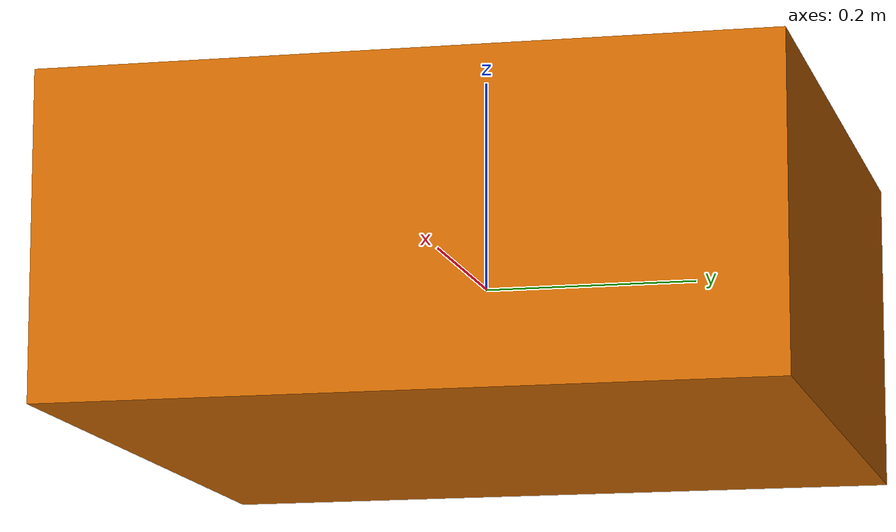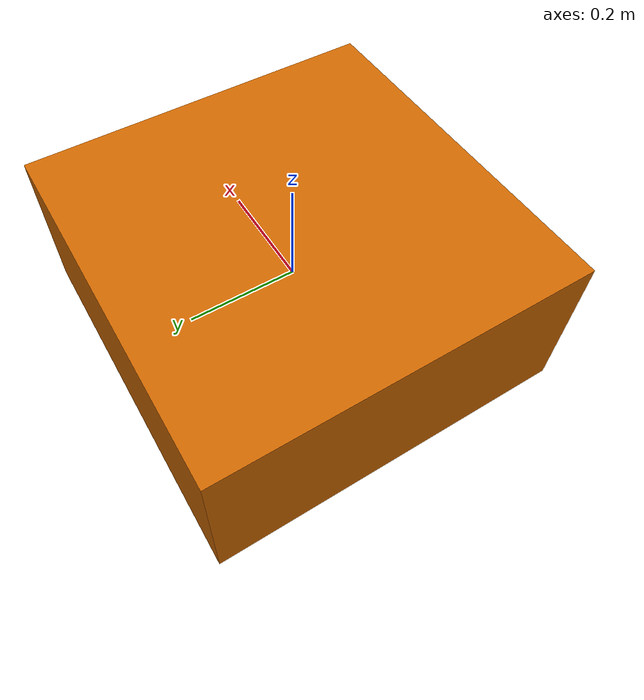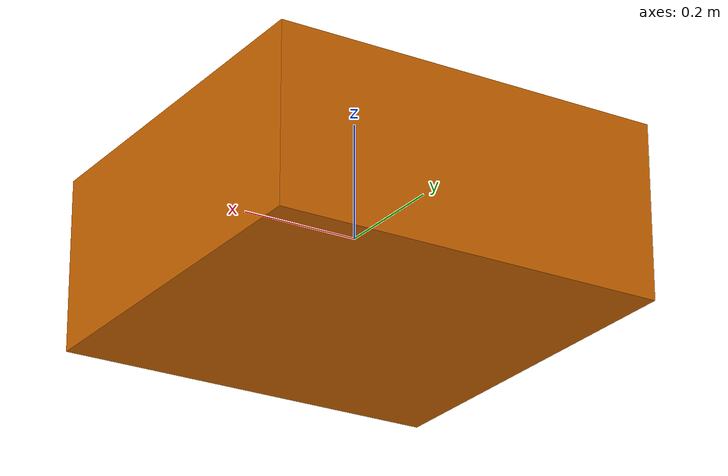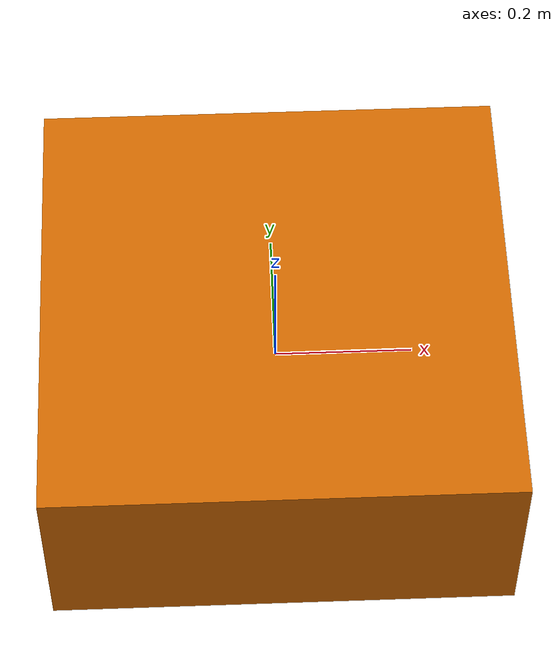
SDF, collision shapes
<!-- DO NOT EDIT: Generated from iris.sdf.jinja -->
<sdf version='1.5'>
  <model name='borinot'>
    <pose>0 0 0.0 0 0 0</pose>
    <link name='borinot__base_link'>
      <pose>0 0 0 0 0 0</pose>
      <inertial>
        <pose>0 0 0 0 0 0</pose>
        <mass>2.085</mass>
        <inertia>
          <ixx>0.017598</ixx>
          <ixy>0.0</ixy>
          <ixz>0.0</ixz>
          <iyy>0.017957</iyy>
          <iyz>0.0</iyz>
          <izz>0.029599</izz>
        </inertia>
      </inertial>
      <!-- TODO: check that is touching the ground -->
      <collision name='base_link_collision'>
        <pose>0 0 0.0 0 0 0</pose>
        <geometry>
          <box>
            <size>0.67 0.67 0.30</size>
          </box>
        </geometry>
        <surface>
          <contact>
            <ode>
              <min_depth>0.001</min_depth>
              <max_vel>0</max_vel>
            </ode>
          </contact>
          <friction>
            <ode />
          </friction>
        </surface>
      </collision>
      <visual name='base_link_visual'>
        <pose>0 0 0 0 0 0</pose>
        <geometry>
          <mesh>
            <scale>1 1 1</scale>
            <!-- TODO: add specific borinot mesh -->
            <uri>model://borinot/meshes/borinot__base_link.dae</uri>
          </mesh>
        </geometry>
        <material>
          <ambient>0.8 0.4 0 1</ambient>
          <diffuse>0.8 0.4 0 1</diffuse>
          <specular>0.1 0.1 0.1 1</specular>
          <emissive>0 0 0 0</emissive>
        </material>
      </visual>
      <gravity>1</gravity>
      <velocity_decay />
    </link>
    <link name='imu_link'>
      <pose>0 0 0 0 0 0</pose>
      <inertial>
        <pose>0 0 0 0 0 0</pose>
        <mass>0.015</mass>
        <inertia>
          <ixx>1e-05</ixx>
          <ixy>0</ixy>
          <ixz>0</ixz>
          <iyy>1e-05</iyy>
          <iyz>0</iyz>
          <izz>1e-05</izz>
        </inertia>
      </inertial>
      <sensor name="imu_sensor" type="imu">
        <always_on>1</always_on>
        <update_rate>250</update_rate>
        <visualize>true</visualize>
      </sensor>
    </link>
    <joint name='imu_joint' type='revolute'>
      <child>imu_link</child>
      <parent>borinot__base_link</parent>
      <axis>
        <xyz>1 0 0</xyz>
        <limit>
          <lower>0</lower>
          <upper>0</upper>
          <effort>0</effort>
          <velocity>0</velocity>
        </limit>
        <dynamics>
          <spring_reference>0</spring_reference>
          <spring_stiffness>0</spring_stiffness>
        </dynamics>
        <use_parent_model_frame>1</use_parent_model_frame>
      </axis>
    </joint>
    <link name='rotor_0'>
      <pose> 0 -0.185 0.05 0 0 0</pose>
      <inertial>
        <pose>0 0 0 0 0 0</pose>
        <mass>0.005</mass>
        <inertia>
          <ixx>9.75e-07</ixx>
          <ixy>0</ixy>
          <ixz>0</ixz>
          <iyy>0.000273104</iyy>
          <iyz>0</iyz>
          <izz>0.000274004</izz>
        </inertia>
      </inertial>
      <collision name='rotor_0_collision'>
        <pose>0 0 0 0 0 0</pose>
        <geometry>
          <cylinder>
            <length>0.005</length>
            <radius>0.128</radius>
          </cylinder>
        </geometry>
        <surface>
          <contact>
            <ode />
          </contact>
          <friction>
            <ode />
          </friction>
        </surface>
      </collision>
      <visual name='rotor_0_visual'>
        <pose>0 0 0 0 0 0</pose>
        <geometry>
          <mesh>
            <scale>0.1 0.1 0.1</scale>
            <uri>model://borinot/meshes/propeller_cw.dae</uri>
          </mesh>
        </geometry>
        <material>
          <script>
            <name>Gazebo/DarkGrey</name>
            <uri>file://media/materials/scripts/gazebo.material</uri>
          </script>
        </material>
      </visual>
      <gravity>1</gravity>
      <velocity_decay />
    </link>
    <joint name='rotor_0_joint' type='revolute'>
      <child>rotor_0</child>
      <parent>borinot__base_link</parent>
      <axis>
        <xyz>0 0 1</xyz>
        <limit>
          <lower>-1e+16</lower>
          <upper>1e+16</upper>
        </limit>
        <dynamics>
          <spring_reference>0</spring_reference>
          <spring_stiffness>0</spring_stiffness>
        </dynamics>
        <use_parent_model_frame>1</use_parent_model_frame>
      </axis>
    </joint>
    <link name='rotor_1'>
      <pose>0 0.185 0.05 0 0 0</pose>
      <inertial>
        <pose>0 0 0 0 0 0</pose>
        <mass>0.005</mass>
        <inertia>
          <ixx>9.75e-07</ixx>
          <ixy>0</ixy>
          <ixz>0</ixz>
          <iyy>0.000273104</iyy>
          <iyz>0</iyz>
          <izz>0.000274004</izz>
        </inertia>
      </inertial>
      <collision name='rotor_1_collision'>
        <pose>0 0 0 0 0 0</pose>
        <geometry>
          <cylinder>
            <length>0.005</length>
            <radius>0.128</radius>
          </cylinder>
        </geometry>
        <surface>
          <contact>
            <ode />
          </contact>
          <friction>
            <ode />
          </friction>
        </surface>
      </collision>
      <visual name='rotor_1_visual'>
        <pose>0 0 0 0 0 0</pose>
        <geometry>
          <mesh>
            <scale>0.1 0.1 0.1</scale>
            <uri>model://borinot/meshes/propeller_ccw.dae</uri>
          </mesh>
        </geometry>
        <material>
          <script>
            <name>Gazebo/DarkGrey</name>
            <uri>file://media/materials/scripts/gazebo.material</uri>
          </script>
        </material>
      </visual>
      <gravity>1</gravity>
      <velocity_decay />
    </link>
    <joint name='rotor_1_joint' type='revolute'>
      <child>rotor_1</child>
      <parent>borinot__base_link</parent>
      <axis>
        <xyz>0 0 1</xyz>
        <limit>
          <lower>-1e+16</lower>
          <upper>1e+16</upper>
        </limit>
        <dynamics>
          <spring_reference>0</spring_reference>
          <spring_stiffness>0</spring_stiffness>
        </dynamics>
        <use_parent_model_frame>1</use_parent_model_frame>
      </axis>
    </joint>
    <link name='rotor_2'>
      <pose>0.1602146997 0.0925 0.05 0 0 0</pose>
      <inertial>
        <pose>0 0 0 0 0 0</pose>
        <mass>0.005</mass>
        <inertia>
          <ixx>9.75e-07</ixx>
          <ixy>0</ixy>
          <ixz>0</ixz>
          <iyy>0.000273104</iyy>
          <iyz>0</iyz>
          <izz>0.000274004</izz>
        </inertia>
      </inertial>
      <collision name='rotor_2_collision'>
        <pose>0 0 0 0 0 0</pose>
        <geometry>
          <cylinder>
            <length>0.005</length>
            <radius>0.128</radius>
          </cylinder>
        </geometry>
        <surface>
          <contact>
            <ode />
          </contact>
          <friction>
            <ode />
          </friction>
        </surface>
      </collision>
      <visual name='rotor_2_visual'>
        <pose>0 0 0 0 0 0</pose>
        <geometry>
          <mesh>
            <scale>0.1 0.1 0.1</scale>
            <uri>model://borinot/meshes/propeller_cw.dae</uri>
          </mesh>
        </geometry>
        <material>
          <script>
            <name>Gazebo/Blue</name>
            <uri>file://media/materials/scripts/gazebo.material</uri>
          </script>
        </material>
      </visual>
      <gravity>1</gravity>
      <velocity_decay />
    </link>
    <joint name='rotor_2_joint' type='revolute'>
      <child>rotor_2</child>
      <parent>borinot__base_link</parent>
      <axis>
        <xyz>0 0 1</xyz>
        <limit>
          <lower>-1e+16</lower>
          <upper>1e+16</upper>
        </limit>
        <dynamics>
          <spring_reference>0</spring_reference>
          <spring_stiffness>0</spring_stiffness>
        </dynamics>
        <use_parent_model_frame>1</use_parent_model_frame>
      </axis>
    </joint>
    <link name='rotor_3'>
      <pose>-0.1602146997 -0.0925 0.05 0 0 0</pose>
      <inertial>
        <pose>0 0 0 0 0 0</pose>
        <mass>0.005</mass>
        <inertia>
          <ixx>9.75e-07</ixx>
          <ixy>0</ixy>
          <ixz>0</ixz>
          <iyy>0.000273104</iyy>
          <iyz>0</iyz>
          <izz>0.000274004</izz>
        </inertia>
      </inertial>
      <collision name='rotor_3_collision'>
        <pose>0 0 0 0 0 0</pose>
        <geometry>
          <cylinder>
            <length>0.005</length>
            <radius>0.128</radius>
          </cylinder>
        </geometry>
        <surface>
          <contact>
            <ode />
          </contact>
          <friction>
            <ode />
          </friction>
        </surface>
      </collision>
      <visual name='rotor_3_visual'>
        <pose>0 0 0 0 0 0</pose>
        <geometry>
          <mesh>
            <scale>0.1 0.1 0.1</scale>
            <uri>model://borinot/meshes/propeller_ccw.dae</uri>
          </mesh>
        </geometry>
        <material>
          <script>
            <name>Gazebo/DarkGrey</name>
            <uri>file://media/materials/scripts/gazebo.material</uri>
          </script>
        </material>
      </visual>
      <gravity>1</gravity>
      <velocity_decay />
    </link>
    <joint name='rotor_3_joint' type='revolute'>
      <child>rotor_3</child>
      <parent>borinot__base_link</parent>
      <axis>
        <xyz>0 0 1</xyz>
        <limit>
          <lower>-1e+16</lower>
          <upper>1e+16</upper>
        </limit>
        <dynamics>
          <spring_reference>0</spring_reference>
          <spring_stiffness>0</spring_stiffness>
        </dynamics>
        <use_parent_model_frame>1</use_parent_model_frame>
      </axis>
    </joint>
    <link name='rotor_4'>
      <pose>0.1602146997 -0.0925 0.05 0 0 0</pose>
      <inertial>
        <pose>0 0 0 0 0 0</pose>
        <mass>0.005</mass>
        <inertia>
          <ixx>9.75e-07</ixx>
          <ixy>0</ixy>
          <ixz>0</ixz>
          <iyy>0.000273104</iyy>
          <iyz>0</iyz>
          <izz>0.000274004</izz>
        </inertia>
      </inertial>
      <collision name='rotor_4_collision'>
        <pose>0 0 0 0 0 0</pose>
        <geometry>
          <cylinder>
            <length>0.005</length>
            <radius>0.128</radius>
          </cylinder>
        </geometry>
        <surface>
          <contact>
            <ode />
          </contact>
          <friction>
            <ode />
          </friction>
        </surface>
      </collision>
      <visual name='rotor_4_visual'>
        <pose>0 0 0 0 0 0</pose>
        <geometry>
          <mesh>
            <scale>0.1 0.1 0.1</scale>
            <uri>model://borinot/meshes/propeller_ccw.dae</uri>
          </mesh>
        </geometry>
        <material>
          <script>
            <name>Gazebo/Blue</name>
            <uri>file://media/materials/scripts/gazebo.material</uri>
          </script>
        </material>
      </visual>
      <gravity>1</gravity>
      <velocity_decay />
    </link>
    <joint name='rotor_4_joint' type='revolute'>
      <child>rotor_4</child>
      <parent>borinot__base_link</parent>
      <axis>
        <xyz>0 0 1</xyz>
        <limit>
          <lower>-1e+16</lower>
          <upper>1e+16</upper>
        </limit>
        <dynamics>
          <spring_reference>0</spring_reference>
          <spring_stiffness>0</spring_stiffness>
        </dynamics>
        <use_parent_model_frame>1</use_parent_model_frame>
      </axis>
    </joint>
    <link name='rotor_5'>
      <pose>-0.1602146997 0.0925 0.05 0 0 0</pose>
      <inertial>
        <pose>0 0 0 0 0 0</pose>
        <mass>0.005</mass>
        <inertia>
          <ixx>9.75e-07</ixx>
          <ixy>0</ixy>
          <ixz>0</ixz>
          <iyy>0.000273104</iyy>
          <iyz>0</iyz>
          <izz>0.000274004</izz>
        </inertia>
      </inertial>
      <collision name='rotor_5_collision'>
        <pose>0 0 0 0 0 0</pose>
        <geometry>
          <cylinder>
            <length>0.005</length>
            <radius>0.128</radius>
          </cylinder>
        </geometry>
        <surface>
          <contact>
            <ode />
          </contact>
          <friction>
            <ode />
          </friction>
        </surface>
      </collision>
      <visual name='rotor_5_visual'>
        <pose>0 0 0 0 0 0</pose>
        <geometry>
          <mesh>
            <scale>0.1 0.1 0.1</scale>
            <uri>model://borinot/meshes/propeller_cw.dae</uri>
          </mesh>
        </geometry>
        <material>
          <script>
            <name>Gazebo/DarkGrey</name>
            <uri>file://media/materials/scripts/gazebo.material</uri>
          </script>
        </material>
      </visual>
      <gravity>1</gravity>
      <velocity_decay />
    </link>
    <joint name='rotor_5_joint' type='revolute'>
      <child>rotor_5</child>
      <parent>borinot__base_link</parent>
      <axis>
        <xyz>0 0 1</xyz>
        <limit>
          <lower>-1e+16</lower>
          <upper>1e+16</upper>
        </limit>
        <dynamics>
          <spring_reference>0</spring_reference>
          <spring_stiffness>0</spring_stiffness>
        </dynamics>
        <use_parent_model_frame>1</use_parent_model_frame>
      </axis>
    </joint>

    <plugin
      filename="libgazebo_barometer_plugin.so"
      name="barometer_plugin::BarometerPlugin">
      <linkName>borinot__base_link</linkName>
      <pubRate>50</pubRate>
      <baroTopic>/baro</baroTopic>
    </plugin>
    <plugin
      filename="libgazebo_magnetometer_plugin.so"
      name="magnetometer_plugin::MagnetometerPlugin">
      <linkName>borinot__base_link</linkName>
      <pubRate>100</pubRate>
      <noiseDensity>0.0004</noiseDensity>
      <randomWalk>6.4e-06</randomWalk>
      <biasCorrelationTime>600</biasCorrelationTime>
      <magTopic>/mag</magTopic>
    </plugin>
    <plugin
      filename="libgazebo_gps_plugin.so"
      name="gps_plugin::GpsPlugin">
      <link_name>borinot__base_link</link_name>
    </plugin>

    <plugin name='ignition::gazebo::systems::MulticopterMotorModel'
      filename='ignition-gazebo-multicopter-motor-model-system'>
      <jointName>rotor_0_joint</jointName>
      <linkName>rotor_0</linkName>
      <turningDirection>cw</turningDirection>
      <!-- time constant identified by sergi -->
      <timeConstantUp>0.005</timeConstantUp>
      <timeConstantDown>0.005</timeConstantDown>
      <!-- tmotor f90 kv1300 datasheet, 6S GF 7042 -->
      <!--
            max rpm: 21350 = 2236rad/s
            max thrust: 2110g = 20.6991N
            cf computed with 60% thrust values (1196g at 15400rpm)
            cf =
        -->
      <maxRotVelocity>2236</maxRotVelocity>
      <motorConstant>4.511e-06</motorConstant>
      <!-- TODO: moment constant to be identified -->
      <momentConstant>0.06</momentConstant>
      <commandSubTopic>/gazebo/command/motor_speed</commandSubTopic>
      <motorNumber>0</motorNumber>
      <!-- TODO: don't know what this constant does -->
      <rotorDragCoefficient>0.000175</rotorDragCoefficient>
      <rollingMomentCoefficient>1e-06</rollingMomentCoefficient>
      <motorSpeedPubTopic>/motor_speed/0</motorSpeedPubTopic>
      <rotorVelocitySlowdownSim>10</rotorVelocitySlowdownSim>
      <motorType>velocity</motorType>
    </plugin>

    <plugin name='ignition::gazebo::systems::MulticopterMotorModel'
      filename='ignition-gazebo-multicopter-motor-model-system'>
      <jointName>rotor_1_joint</jointName>
      <linkName>rotor_1</linkName>
      <turningDirection>ccw</turningDirection>
      <!-- time constant identified by sergi -->
      <timeConstantUp>0.005</timeConstantUp>
      <timeConstantDown>0.005</timeConstantDown>
      <!-- tmotor f90 kv1300 datasheet, 6S GF 7042 -->
      <!--
            max rpm: 21350 = 2236rad/s
            max thrust: 2110g = 20.6991N
            cf computed with 60% thrust values (1196g at 15400rpm)
            cf =
        -->
      <maxRotVelocity>2236</maxRotVelocity>
      <motorConstant>4.511e-06</motorConstant>
      <!-- TODO: moment constant to be identified -->
      <momentConstant>0.06</momentConstant>
      <commandSubTopic>/gazebo/command/motor_speed</commandSubTopic>
      <motorNumber>1</motorNumber>
      <!-- TODO: don't know what this constant does -->
      <rotorDragCoefficient>0.000175</rotorDragCoefficient>
      <rollingMomentCoefficient>1e-06</rollingMomentCoefficient>
      <motorSpeedPubTopic>/motor_speed/1</motorSpeedPubTopic>
      <rotorVelocitySlowdownSim>10</rotorVelocitySlowdownSim>
      <motorType>velocity</motorType>
    </plugin>

    <plugin name='ignition::gazebo::systems::MulticopterMotorModel'
      filename='ignition-gazebo-multicopter-motor-model-system'>
      <jointName>rotor_2_joint</jointName>
      <linkName>rotor_2</linkName>
      <turningDirection>cw</turningDirection>
      <!-- time constant identified by sergi -->
      <timeConstantUp>0.005</timeConstantUp>
      <timeConstantDown>0.005</timeConstantDown>
      <!-- tmotor f90 kv1300 datasheet, 6S GF 7042 -->
      <!--
            max rpm: 21350 = 2236rad/s
            max thrust: 2110g = 20.6991N
            cf computed with 60% thrust values (1196g at 15400rpm)
            cf =
        -->
      <maxRotVelocity>2236</maxRotVelocity>
      <motorConstant>4.511e-06</motorConstant>
      <!-- TODO: moment constant to be identified -->
      <momentConstant>0.06</momentConstant>
      <commandSubTopic>/gazebo/command/motor_speed</commandSubTopic>
      <motorNumber>2</motorNumber>
      <!-- TODO: don't know what this constant does -->
      <rotorDragCoefficient>0.000175</rotorDragCoefficient>
      <rollingMomentCoefficient>1e-06</rollingMomentCoefficient>
      <motorSpeedPubTopic>/motor_speed/2</motorSpeedPubTopic>
      <rotorVelocitySlowdownSim>10</rotorVelocitySlowdownSim>
      <motorType>velocity</motorType>
    </plugin>

    <plugin name='ignition::gazebo::systems::MulticopterMotorModel'
      filename='ignition-gazebo-multicopter-motor-model-system'>
      <jointName>rotor_3_joint</jointName>
      <linkName>rotor_3</linkName>
      <turningDirection>ccw</turningDirection>
      <!-- time constant identified by sergi -->
      <timeConstantUp>0.005</timeConstantUp>
      <timeConstantDown>0.005</timeConstantDown>
      <!-- tmotor f90 kv1300 datasheet, 6S GF 7042 -->
      <!--
            max rpm: 21350 = 2236rad/s
            max thrust: 2110g = 20.6991N
            cf computed with 60% thrust values (1196g at 15400rpm)
            cf =
        -->
      <maxRotVelocity>2236</maxRotVelocity>
      <motorConstant>4.511e-06</motorConstant>
      <!-- TODO: moment constant to be identified -->
      <momentConstant>0.06</momentConstant>
      <commandSubTopic>/gazebo/command/motor_speed</commandSubTopic>
      <motorNumber>3</motorNumber>
      <!-- TODO: don't know what this constant does -->
      <rotorDragCoefficient>0.000175</rotorDragCoefficient>
      <rollingMomentCoefficient>1e-06</rollingMomentCoefficient>
      <motorSpeedPubTopic>/motor_speed/3</motorSpeedPubTopic>
      <rotorVelocitySlowdownSim>10</rotorVelocitySlowdownSim>
      <motorType>velocity</motorType>
    </plugin>

    <plugin name='ignition::gazebo::systems::MulticopterMotorModel'
      filename='ignition-gazebo-multicopter-motor-model-system'>
      <jointName>rotor_4_joint</jointName>
      <linkName>rotor_4</linkName>
      <turningDirection>ccw</turningDirection>
      <!-- time constant identified by sergi -->
      <timeConstantUp>0.005</timeConstantUp>
      <timeConstantDown>0.005</timeConstantDown>
      <!-- tmotor f90 kv1300 datasheet, 6S GF 7042 -->
      <!--
            max rpm: 21350 = 2236rad/s
            max thrust: 2110g = 20.6991N
            cf computed with 60% thrust values (1196g at 15400rpm)
            cf =
        -->
      <maxRotVelocity>2236</maxRotVelocity>
      <motorConstant>4.511e-06</motorConstant>
      <!-- TODO: moment constant to be identified -->
      <momentConstant>0.06</momentConstant>
      <commandSubTopic>/gazebo/command/motor_speed</commandSubTopic>
      <motorNumber>4</motorNumber>
      <!-- TODO: don't know what this constant does -->
      <rotorDragCoefficient>0.000175</rotorDragCoefficient>
      <rollingMomentCoefficient>1e-06</rollingMomentCoefficient>
      <motorSpeedPubTopic>/motor_speed/4</motorSpeedPubTopic>
      <rotorVelocitySlowdownSim>10</rotorVelocitySlowdownSim>
      <motorType>velocity</motorType>
    </plugin>

    <plugin name='ignition::gazebo::systems::MulticopterMotorModel'
      filename='ignition-gazebo-multicopter-motor-model-system'>
      <jointName>rotor_5_joint</jointName>
      <linkName>rotor_5</linkName>
      <turningDirection>cw</turningDirection>
      <!-- time constant identified by sergi -->
      <timeConstantUp>0.005</timeConstantUp>
      <timeConstantDown>0.005</timeConstantDown>
      <!-- tmotor f90 kv1300 datasheet, 6S GF 7042 -->
      <!--
            max rpm: 21350 = 2236rad/s
            max thrust: 2110g = 20.6991N
            cf computed with 60% thrust values (1196g at 15400rpm)
            cf =
        -->
      <maxRotVelocity>2236</maxRotVelocity>
      <motorConstant>4.511e-06</motorConstant>
      <!-- TODO: moment constant to be identified -->
      <momentConstant>0.06</momentConstant>
      <commandSubTopic>/gazebo/command/motor_speed</commandSubTopic>
      <motorNumber>5</motorNumber>
      <!-- TODO: don't know what this constant does -->
      <rotorDragCoefficient>0.000175</rotorDragCoefficient>
      <rollingMomentCoefficient>1e-06</rollingMomentCoefficient>
      <motorSpeedPubTopic>/motor_speed/5</motorSpeedPubTopic>
      <rotorVelocitySlowdownSim>10</rotorVelocitySlowdownSim>
      <motorType>velocity</motorType>
    </plugin>

    <plugin
      filename="libmavlink_sitl_ign_gazebo.so"
      name="mavlink_interface::GazeboMavlinkInterface">
      <imuName>imu_sensor</imuName>
      <magSubTopic>/mag</magSubTopic>
      <baroSubTopic>/baro</baroSubTopic>
      <mavlink_addr>INADDR_ANY</mavlink_addr>
      <mavlink_tcp_port>4560</mavlink_tcp_port>
      <mavlink_udp_port>14560</mavlink_udp_port>
      <serialEnabled>0</serialEnabled>
      <serialDevice>/dev/ttyACM0</serialDevice>
      <baudRate>921600</baudRate>
      <qgc_addr>INADDR_ANY</qgc_addr>
      <qgc_udp_port>14550</qgc_udp_port>
      <sdk_addr>INADDR_ANY</sdk_addr>
      <sdk_udp_port>14540</sdk_udp_port>
      <hil_mode>0</hil_mode>
      <hil_state_level>0</hil_state_level>
      <send_vision_estimation>0</send_vision_estimation>
      <send_odometry>1</send_odometry>
      <enable_lockstep>1</enable_lockstep>
      <use_tcp>1</use_tcp>
      <motorSpeedCommandPubTopic>/gazebo/command/motor_speed</motorSpeedCommandPubTopic>
      <control_channels>
        <channel name='rotor1'>
          <input_index>0</input_index>
          <input_offset>0</input_offset>
          <input_scaling>2136</input_scaling>
          <zero_position_disarmed>0</zero_position_disarmed>
          <zero_position_armed>100</zero_position_armed>
          <joint_control_type>velocity</joint_control_type>
        </channel>
        <channel name='rotor2'>
          <input_index>1</input_index>
          <input_offset>0</input_offset>
          <input_scaling>2136</input_scaling>
          <zero_position_disarmed>0</zero_position_disarmed>
          <zero_position_armed>100</zero_position_armed>
          <joint_control_type>velocity</joint_control_type>
        </channel>
        <channel name='rotor3'>
          <input_index>2</input_index>
          <input_offset>0</input_offset>
          <input_scaling>2136</input_scaling>
          <zero_position_disarmed>0</zero_position_disarmed>
          <zero_position_armed>100</zero_position_armed>
          <joint_control_type>velocity</joint_control_type>
        </channel>
        <channel name='rotor4'>
          <input_index>3</input_index>
          <input_offset>0</input_offset>
          <input_scaling>2136</input_scaling>
          <zero_position_disarmed>0</zero_position_disarmed>
          <zero_position_armed>100</zero_position_armed>
          <joint_control_type>velocity</joint_control_type>
        </channel>
        <channel name='rotor5'>
          <input_index>4</input_index>
          <input_offset>0</input_offset>
          <input_scaling>2136</input_scaling>
          <zero_position_disarmed>0</zero_position_disarmed>
          <zero_position_armed>100</zero_position_armed>
          <joint_control_type>velocity</joint_control_type>
        </channel>
        <channel name='rotor6'>
          <input_index>5</input_index>
          <input_offset>0</input_offset>
          <input_scaling>2136</input_scaling>
          <zero_position_disarmed>0</zero_position_disarmed>
          <zero_position_armed>100</zero_position_armed>
          <joint_control_type>velocity</joint_control_type>
        </channel>
      </control_channels>
    </plugin>

    <static>0</static>
    <plugin filename="libignition-gazebo-imu-system.so"
      name="ignition::gazebo::systems::Imu">
      <linkName>imu_link</linkName>
      <imuTopic>/imu</imuTopic>
      <gyroscopeNoiseDensity>0.00018665</gyroscopeNoiseDensity>
      <gyroscopeRandomWalk>3.8785e-05</gyroscopeRandomWalk>
      <gyroscopeBiasCorrelationTime>1000.0</gyroscopeBiasCorrelationTime>
      <gyroscopeTurnOnBiasSigma>0.0087</gyroscopeTurnOnBiasSigma>
      <accelerometerNoiseDensity>0.00186</accelerometerNoiseDensity>
      <accelerometerRandomWalk>0.006</accelerometerRandomWalk>
      <accelerometerBiasCorrelationTime>300.0</accelerometerBiasCorrelationTime>
      <accelerometerTurnOnBiasSigma>0.196</accelerometerTurnOnBiasSigma>
    </plugin>
  </model>
</sdf>
